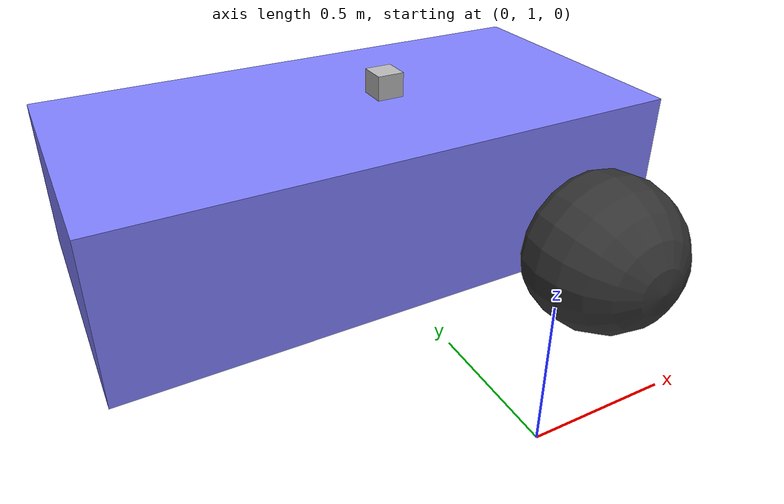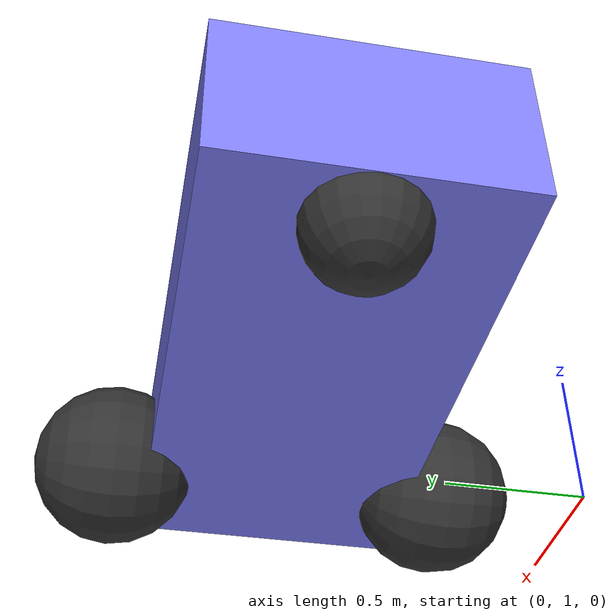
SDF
<?xml version="1.0" ?>
<sdf version="1.6">

    <model name='vehicle_blue'>
      <pose>0 2 0.325 0 -0 0</pose>

      <link name='chassis'>
        <pose>-0.151427 -0 0.175 0 -0 0</pose>
        <inertial>
          <mass>1.14395</mass>
          <inertia>
            <ixx>0.126164</ixx>
            <ixy>0</ixy>
            <ixz>0</ixz>
            <iyy>0.416519</iyy>
            <iyz>0</iyz>
            <izz>0.481014</izz>
          </inertia>
        </inertial>
        <visual name='visual'>
          <geometry>
            <box>
              <size>2.01142 1 0.568726</size>
            </box>
          </geometry>
          <material>
            <ambient>0.5 0.5 1.0 1</ambient>
            <diffuse>0.5 0.5 1.0 1</diffuse>
            <specular>0.0 0.0 1.0 1</specular>
          </material>
        </visual>
        <collision name='collision'>
          <geometry>
            <box>
              <size>2.01142 1 0.568726</size>
            </box>
          </geometry>
        </collision>
      </link>

      <link name='left_wheel'>
        <pose>0.554283 0.625029 -0.025 -1.5707 0 0</pose>
        <inertial>
          <mass>2</mass>
          <inertia>
            <ixx>0.145833</ixx>
            <ixy>0</ixy>
            <ixz>0</ixz>
            <iyy>0.145833</iyy>
            <iyz>0</iyz>
            <izz>0.125</izz>
          </inertia>
        </inertial>
        <visual name='visual'>
          <geometry>
            <sphere>
              <radius>0.3</radius>
            </sphere>
          </geometry>
          <material>
            <ambient>0.2 0.2 0.2 1</ambient>
            <diffuse>0.2 0.2 0.2 1</diffuse>
            <specular>0.2 0.2 0.2 1</specular>
          </material>
        </visual>
        <collision name='collision'>
          <geometry>
            <sphere>
              <radius>0.3</radius>
            </sphere>
          </geometry>
          <surface>
            <friction>
              <ode>
                <mu>1</mu>
                <mu2>1</mu2>
                <slip1>0.035</slip1>
                <slip2>0</slip2>
                <fdir1>0 0 1</fdir1>
              </ode>
              <bullet>
                <friction>1</friction>
                <friction2>1</friction2>
                <rolling_friction>0.1</rolling_friction>
              </bullet>
            </friction>
          </surface>
        </collision>
      </link>

      <link name='right_wheel'>
        <pose>0.554282 -0.625029 -0.025 -1.5707 0 0</pose>
        <inertial>
          <mass>2</mass>
          <inertia>
            <ixx>0.145833</ixx>
            <ixy>0</ixy>
            <ixz>0</ixz>
            <iyy>0.145833</iyy>
            <iyz>0</iyz>
            <izz>0.125</izz>
          </inertia>
        </inertial>
        <visual name='visual'>
          <geometry>
            <sphere>
              <radius>0.3</radius>
            </sphere>
          </geometry>
          <material>
            <ambient>0.2 0.2 0.2 1</ambient>
            <diffuse>0.2 0.2 0.2 1</diffuse>
            <specular>0.2 0.2 0.2 1</specular>
          </material>
        </visual>
        <collision name='collision'>
          <geometry>
            <sphere>
              <radius>0.3</radius>
            </sphere>
          </geometry>
          <surface>
            <friction>
              <ode>
                <mu>1</mu>
                <mu2>1</mu2>
                <slip1>0.035</slip1>
                <slip2>0</slip2>
                <fdir1>0 0 1</fdir1>
              </ode>
              <bullet>
                <friction>1</friction>
                <friction2>1</friction2>
                <rolling_friction>0.1</rolling_friction>
              </bullet>
            </friction>
          </surface>
        </collision>
      </link>

      <link name='caster'>
        <pose>-0.957138 -0 -0.125 0 -0 0</pose>
        <inertial>
          <mass>1</mass>
          <inertia>
            <ixx>0.1</ixx>
            <ixy>0</ixy>
            <ixz>0</ixz>
            <iyy>0.1</iyy>
            <iyz>0</iyz>
            <izz>0.1</izz>
          </inertia>
        </inertial>
        <visual name='visual'>
          <geometry>
            <sphere>
              <radius>0.2</radius>
            </sphere>
          </geometry>
          <material>
            <ambient>0.2 0.2 0.2 1</ambient>
            <diffuse>0.2 0.2 0.2 1</diffuse>
            <specular>0.2 0.2 0.2 1</specular>
          </material>
        </visual>
        <collision name='collision'>
          <geometry>
            <sphere>
              <radius>0.2</radius>
            </sphere>
          </geometry>
        </collision>
      </link>

      <joint name='left_wheel_joint' type='revolute'>
        <parent>chassis</parent>
        <child>left_wheel</child>
        <axis>
          <xyz>0 0 1</xyz>
          <limit>
            <lower>-1.79769e+308</lower>
            <upper>1.79769e+308</upper>
          </limit>
        </axis>
      </joint>

      <joint name='right_wheel_joint' type='revolute'>
        <parent>chassis</parent>
        <child>right_wheel</child>
        <axis>
          <xyz>0 0 1</xyz>
          <limit>
            <lower>-1.79769e+308</lower>
            <upper>1.79769e+308</upper>
          </limit>
        </axis>
      </joint>

      <joint name='caster_wheel' type='ball'>
        <parent>chassis</parent>
        <child>caster</child>
      </joint>

      <plugin
        filename="gz-sim-diff-drive-system"
        name="gz::sim::systems::DiffDrive">
        <left_joint>left_wheel_joint</left_joint>
        <right_joint>right_wheel_joint</right_joint>
        <wheel_separation>1.25</wheel_separation>
        <wheel_radius>0.3</wheel_radius>
        <odom_publish_frequency>1</odom_publish_frequency>
        <max_linear_acceleration>1</max_linear_acceleration>
        <min_linear_acceleration>-1</min_linear_acceleration>
        <max_angular_acceleration>2</max_angular_acceleration>
        <min_angular_acceleration>-2</min_angular_acceleration>
        <max_linear_velocity>0.5</max_linear_velocity>
        <min_linear_velocity>-0.5</min_linear_velocity>
        <max_angular_velocity>1</max_angular_velocity>
        <min_angular_velocity>-1</min_angular_velocity>
      </plugin>

      <link name="camera">
        <pose>0.8 0.0 0.2 0 0 0</pose>
        <inertial>
          <mass>0.1</mass>
          <inertia>
            <ixx>0.000166667</ixx>
            <iyy>0.000166667</iyy>
            <izz>0.000166667</izz>
          </inertia>
        </inertial>
        <collision name="collision">
          <geometry>
            <box>
              <size>0.1 0.1 0.1</size>
            </box>
          </geometry>
        </collision>
        <visual name="visual">
          <geometry>
            <box>
              <size>0.1 0.1 0.1</size>
            </box>
          </geometry>
        </visual>

                <sensor name="depth_camera1" type="depth_camera">
          <update_rate>10</update_rate>
          <topic>depth_camera</topic>
          <camera>
            <horizontal_fov>1.05</horizontal_fov>
            <image>
              <width>256</width>
              <height>256</height>
              <format>R_FLOAT32</format>
            </image>
            <clip>
              <near>0.1</near>
              <far>10.0</far>
            </clip>
          </camera>
          </sensor>
</link>
          <joint name='camera_joint' type='fixed'>
        <parent>chassis</parent>
        <child>camera</child>
      </joint>

            <link name="lidar_link">
        <pose>0 0 0.5 0 0 0</pose>
        <inertial>
          <mass>0.1</mass>
          <inertia>
            <ixx>0.000166667</ixx>
            <iyy>0.000166667</iyy>
            <izz>0.000166667</izz>
          </inertia>
        </inertial>
        <collision name="collision">
          <geometry>
            <box>
              <size>0.1 0.1 0.1</size>
            </box>
          </geometry>
        </collision>
        <visual name="visual">
          <geometry>
            <box>
              <size>0.1 0.1 0.1</size>
            </box>
          </geometry>
        </visual>
        <sensor name='gpu_lidar' type='gpu_lidar'>
          <pose>0 0 0 0 0 0</pose>
          <topic>scan</topic>
           <gz_frame_id>diff_drive/lidar_link</gz_frame_id>
          <update_rate>10</update_rate>
          <lidar>
            <scan>
              <horizontal>
                <samples>640</samples>
                <resolution>1</resolution>
                <min_angle>-1.396263</min_angle>
                <max_angle>1.396263</max_angle>
              </horizontal>
              <vertical>
                <samples>1</samples>
                <resolution>1</resolution>
                <min_angle>0.0</min_angle>
                <max_angle>0.0</max_angle>
              </vertical>
            </scan>
            <range>
              <min>0.08</min>
              <max>10.0</max>
              <resolution>0.01</resolution>
            </range>
          </lidar>
          <visualize>true</visualize>
        </sensor>
      </link>

      <joint name='lidar_joint' type='fixed'>
        <parent>chassis</parent>
        <child>lidar_link</child>
      </joint>
    </model>

</sdf>
